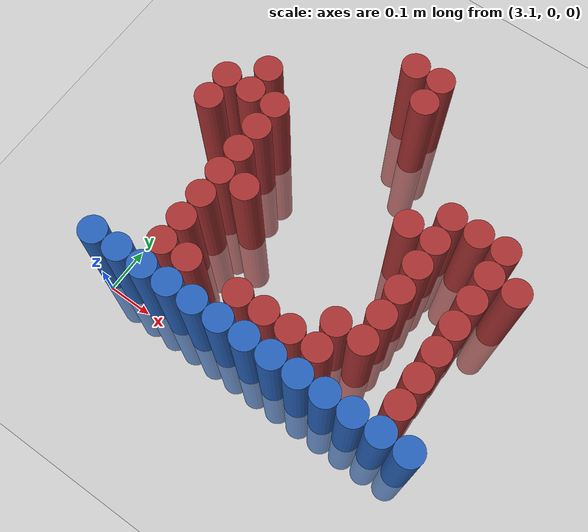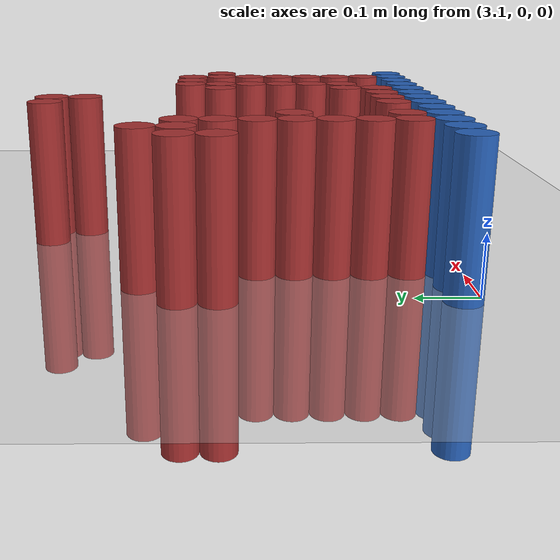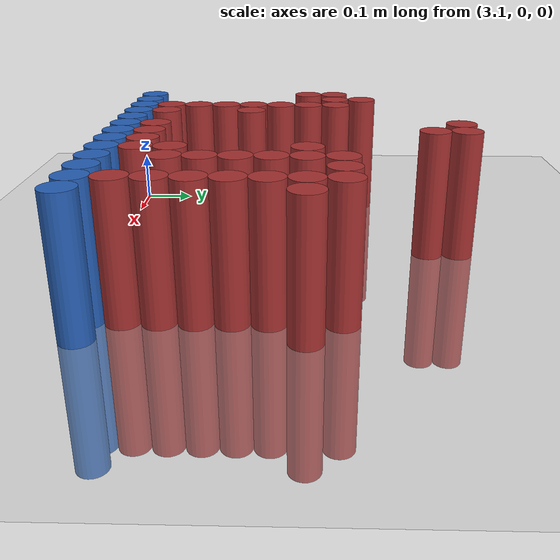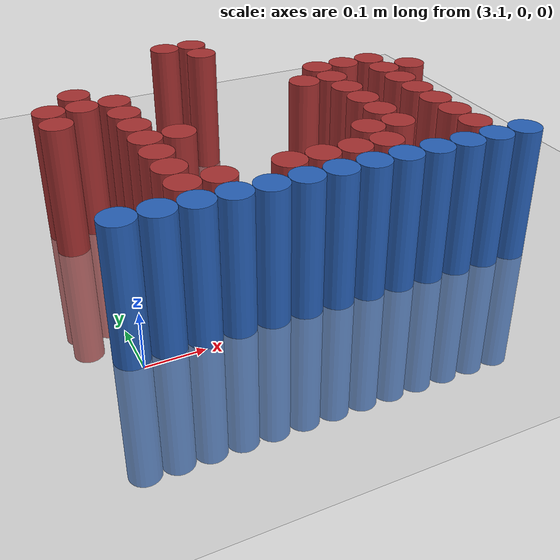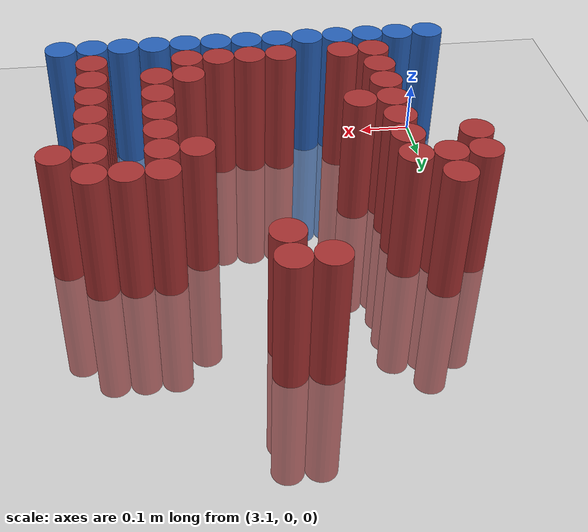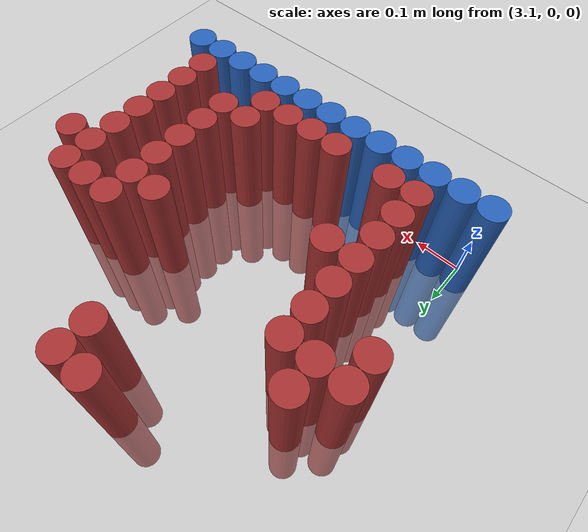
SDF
<sdf version="1.6">
 <world name="default">
  <model name="ground_plane">
   <static>1</static>
   <link name="link">
    <collision name="collision">
     <geometry><plane><normal>0 0 1</normal><size>100 100</size></plane></geometry>
     <surface><friction><ode><mu>100</mu><mu2>50</mu2></ode></friction></surface>
    </collision>
    <visual name="visual">
     <cast_shadows>0</cast_shadows>
     <geometry><plane><normal>0 0 1</normal><size>100 100</size></plane></geometry>
     <material>
      <script><uri>file://media/materials/scripts/gazebo.material</uri><name>Gazebo/Grey</name></script>
     </material>
    </visual>
   </link>
  </model>
  <model name="unit_cylinder_223">
   <static>1</static>
   <pose>3.390000 0.690000 0.000000 0.000000 0.000000 0.000000</pose>
   <link name="link">
    <inertial>
     <mass>1</mass>
     <inertia><ixx>0.145833</ixx><ixy>0</ixy><ixz>0</ixz><iyy>0.145833</iyy><iyz>0</iyz><izz>0.125</izz></inertia>
    </inertial>
    <collision name="collision">
     <geometry><cylinder><radius>0.030000</radius><length>0.5</length></cylinder></geometry>
    </collision>
    <visual name="visual">
     <geometry><cylinder><radius>0.030000</radius><length>0.5</length></cylinder></geometry>
     <material>
      <ambient>0.648000 0.192000 0.192000 1</ambient>
      <diffuse>0.648000 0.192000 0.192000 1</diffuse>
     </material>
     <material>
      <script><name>Gazebo/Grey</name><uri>file://media/materials/scripts/gazebo.material</uri></script>
     </material>
    </visual>
   </link>
  </model>
  <model name="unit_cylinder_224">
   <static>1</static>
   <pose>3.450000 0.690000 0.000000 0.000000 0.000000 0.000000</pose>
   <link name="link">
    <inertial>
     <mass>1</mass>
     <inertia><ixx>0.145833</ixx><ixy>0</ixy><ixz>0</ixz><iyy>0.145833</iyy><iyz>0</iyz><izz>0.125</izz></inertia>
    </inertial>
    <collision name="collision">
     <geometry><cylinder><radius>0.030000</radius><length>0.5</length></cylinder></geometry>
    </collision>
    <visual name="visual">
     <geometry><cylinder><radius>0.030000</radius><length>0.5</length></cylinder></geometry>
     <material>
      <ambient>0.648000 0.192000 0.192000 1</ambient>
      <diffuse>0.648000 0.192000 0.192000 1</diffuse>
     </material>
     <material>
      <script><name>Gazebo/Grey</name><uri>file://media/materials/scripts/gazebo.material</uri></script>
     </material>
    </visual>
   </link>
  </model>
  <model name="unit_cylinder_230">
   <static>1</static>
   <pose>3.450000 0.630000 0.000000 0.000000 0.000000 0.000000</pose>
   <link name="link">
    <inertial>
     <mass>1</mass>
     <inertia><ixx>0.145833</ixx><ixy>0</ixy><ixz>0</ixz><iyy>0.145833</iyy><iyz>0</iyz><izz>0.125</izz></inertia>
    </inertial>
    <collision name="collision">
     <geometry><cylinder><radius>0.030000</radius><length>0.5</length></cylinder></geometry>
    </collision>
    <visual name="visual">
     <geometry><cylinder><radius>0.030000</radius><length>0.5</length></cylinder></geometry>
     <material>
      <ambient>0.648000 0.192000 0.192000 1</ambient>
      <diffuse>0.648000 0.192000 0.192000 1</diffuse>
     </material>
     <material>
      <script><name>Gazebo/Grey</name><uri>file://media/materials/scripts/gazebo.material</uri></script>
     </material>
    </visual>
   </link>
  </model>
  <model name="unit_cylinder_244">
   <static>1</static>
   <pose>3.150000 0.510000 0.000000 0.000000 0.000000 0.000000</pose>
   <link name="link">
    <inertial>
     <mass>1</mass>
     <inertia><ixx>0.145833</ixx><ixy>0</ixy><ixz>0</ixz><iyy>0.145833</iyy><iyz>0</iyz><izz>0.125</izz></inertia>
    </inertial>
    <collision name="collision">
     <geometry><cylinder><radius>0.030000</radius><length>0.5</length></cylinder></geometry>
    </collision>
    <visual name="visual">
     <geometry><cylinder><radius>0.030000</radius><length>0.5</length></cylinder></geometry>
     <material>
      <ambient>0.648000 0.192000 0.192000 1</ambient>
      <diffuse>0.648000 0.192000 0.192000 1</diffuse>
     </material>
     <material>
      <script><name>Gazebo/Grey</name><uri>file://media/materials/scripts/gazebo.material</uri></script>
     </material>
    </visual>
   </link>
  </model>
  <model name="unit_cylinder_249">
   <static>1</static>
   <pose>3.090000 0.450000 0.000000 0.000000 0.000000 0.000000</pose>
   <link name="link">
    <inertial>
     <mass>1</mass>
     <inertia><ixx>0.145833</ixx><ixy>0</ixy><ixz>0</ixz><iyy>0.145833</iyy><iyz>0</iyz><izz>0.125</izz></inertia>
    </inertial>
    <collision name="collision">
     <geometry><cylinder><radius>0.030000</radius><length>0.5</length></cylinder></geometry>
    </collision>
    <visual name="visual">
     <geometry><cylinder><radius>0.030000</radius><length>0.5</length></cylinder></geometry>
     <material>
      <ambient>0.648000 0.192000 0.192000 1</ambient>
      <diffuse>0.648000 0.192000 0.192000 1</diffuse>
     </material>
     <material>
      <script><name>Gazebo/Grey</name><uri>file://media/materials/scripts/gazebo.material</uri></script>
     </material>
    </visual>
   </link>
  </model>
  <model name="unit_cylinder_250">
   <static>1</static>
   <pose>3.150000 0.450000 0.000000 0.000000 0.000000 0.000000</pose>
   <link name="link">
    <inertial>
     <mass>1</mass>
     <inertia><ixx>0.145833</ixx><ixy>0</ixy><ixz>0</ixz><iyy>0.145833</iyy><iyz>0</iyz><izz>0.125</izz></inertia>
    </inertial>
    <collision name="collision">
     <geometry><cylinder><radius>0.030000</radius><length>0.5</length></cylinder></geometry>
    </collision>
    <visual name="visual">
     <geometry><cylinder><radius>0.030000</radius><length>0.5</length></cylinder></geometry>
     <material>
      <ambient>0.648000 0.192000 0.192000 1</ambient>
      <diffuse>0.648000 0.192000 0.192000 1</diffuse>
     </material>
     <material>
      <script><name>Gazebo/Grey</name><uri>file://media/materials/scripts/gazebo.material</uri></script>
     </material>
    </visual>
   </link>
  </model>
  <model name="unit_cylinder_251">
   <static>1</static>
   <pose>3.210000 0.450000 0.000000 0.000000 0.000000 0.000000</pose>
   <link name="link">
    <inertial>
     <mass>1</mass>
     <inertia><ixx>0.145833</ixx><ixy>0</ixy><ixz>0</ixz><iyy>0.145833</iyy><iyz>0</iyz><izz>0.125</izz></inertia>
    </inertial>
    <collision name="collision">
     <geometry><cylinder><radius>0.030000</radius><length>0.5</length></cylinder></geometry>
    </collision>
    <visual name="visual">
     <geometry><cylinder><radius>0.030000</radius><length>0.5</length></cylinder></geometry>
     <material>
      <ambient>0.648000 0.192000 0.192000 1</ambient>
      <diffuse>0.648000 0.192000 0.192000 1</diffuse>
     </material>
     <material>
      <script><name>Gazebo/Grey</name><uri>file://media/materials/scripts/gazebo.material</uri></script>
     </material>
    </visual>
   </link>
  </model>
  <model name="unit_cylinder_252">
   <static>1</static>
   <pose>3.630000 0.450000 0.000000 0.000000 0.000000 0.000000</pose>
   <link name="link">
    <inertial>
     <mass>1</mass>
     <inertia><ixx>0.145833</ixx><ixy>0</ixy><ixz>0</ixz><iyy>0.145833</iyy><iyz>0</iyz><izz>0.125</izz></inertia>
    </inertial>
    <collision name="collision">
     <geometry><cylinder><radius>0.030000</radius><length>0.5</length></cylinder></geometry>
    </collision>
    <visual name="visual">
     <geometry><cylinder><radius>0.030000</radius><length>0.5</length></cylinder></geometry>
     <material>
      <ambient>0.648000 0.192000 0.192000 1</ambient>
      <diffuse>0.648000 0.192000 0.192000 1</diffuse>
     </material>
     <material>
      <script><name>Gazebo/Grey</name><uri>file://media/materials/scripts/gazebo.material</uri></script>
     </material>
    </visual>
   </link>
  </model>
  <model name="unit_cylinder_253">
   <static>1</static>
   <pose>3.690000 0.450000 0.000000 0.000000 0.000000 0.000000</pose>
   <link name="link">
    <inertial>
     <mass>1</mass>
     <inertia><ixx>0.145833</ixx><ixy>0</ixy><ixz>0</ixz><iyy>0.145833</iyy><iyz>0</iyz><izz>0.125</izz></inertia>
    </inertial>
    <collision name="collision">
     <geometry><cylinder><radius>0.030000</radius><length>0.5</length></cylinder></geometry>
    </collision>
    <visual name="visual">
     <geometry><cylinder><radius>0.030000</radius><length>0.5</length></cylinder></geometry>
     <material>
      <ambient>0.648000 0.192000 0.192000 1</ambient>
      <diffuse>0.648000 0.192000 0.192000 1</diffuse>
     </material>
     <material>
      <script><name>Gazebo/Grey</name><uri>file://media/materials/scripts/gazebo.material</uri></script>
     </material>
    </visual>
   </link>
  </model>
  <model name="unit_cylinder_254">
   <static>1</static>
   <pose>3.750000 0.450000 0.000000 0.000000 0.000000 0.000000</pose>
   <link name="link">
    <inertial>
     <mass>1</mass>
     <inertia><ixx>0.145833</ixx><ixy>0</ixy><ixz>0</ixz><iyy>0.145833</iyy><iyz>0</iyz><izz>0.125</izz></inertia>
    </inertial>
    <collision name="collision">
     <geometry><cylinder><radius>0.030000</radius><length>0.5</length></cylinder></geometry>
    </collision>
    <visual name="visual">
     <geometry><cylinder><radius>0.030000</radius><length>0.5</length></cylinder></geometry>
     <material>
      <ambient>0.648000 0.192000 0.192000 1</ambient>
      <diffuse>0.648000 0.192000 0.192000 1</diffuse>
     </material>
     <material>
      <script><name>Gazebo/Grey</name><uri>file://media/materials/scripts/gazebo.material</uri></script>
     </material>
    </visual>
   </link>
  </model>
  <model name="unit_cylinder_261">
   <static>1</static>
   <pose>3.090000 0.390000 0.000000 0.000000 0.000000 0.000000</pose>
   <link name="link">
    <inertial>
     <mass>1</mass>
     <inertia><ixx>0.145833</ixx><ixy>0</ixy><ixz>0</ixz><iyy>0.145833</iyy><iyz>0</iyz><izz>0.125</izz></inertia>
    </inertial>
    <collision name="collision">
     <geometry><cylinder><radius>0.030000</radius><length>0.5</length></cylinder></geometry>
    </collision>
    <visual name="visual">
     <geometry><cylinder><radius>0.030000</radius><length>0.5</length></cylinder></geometry>
     <material>
      <ambient>0.648000 0.192000 0.192000 1</ambient>
      <diffuse>0.648000 0.192000 0.192000 1</diffuse>
     </material>
     <material>
      <script><name>Gazebo/Grey</name><uri>file://media/materials/scripts/gazebo.material</uri></script>
     </material>
    </visual>
   </link>
  </model>
  <model name="unit_cylinder_262">
   <static>1</static>
   <pose>3.210000 0.390000 0.000000 0.000000 0.000000 0.000000</pose>
   <link name="link">
    <inertial>
     <mass>1</mass>
     <inertia><ixx>0.145833</ixx><ixy>0</ixy><ixz>0</ixz><iyy>0.145833</iyy><iyz>0</iyz><izz>0.125</izz></inertia>
    </inertial>
    <collision name="collision">
     <geometry><cylinder><radius>0.030000</radius><length>0.5</length></cylinder></geometry>
    </collision>
    <visual name="visual">
     <geometry><cylinder><radius>0.030000</radius><length>0.5</length></cylinder></geometry>
     <material>
      <ambient>0.648000 0.192000 0.192000 1</ambient>
      <diffuse>0.648000 0.192000 0.192000 1</diffuse>
     </material>
     <material>
      <script><name>Gazebo/Grey</name><uri>file://media/materials/scripts/gazebo.material</uri></script>
     </material>
    </visual>
   </link>
  </model>
  <model name="unit_cylinder_263">
   <static>1</static>
   <pose>3.570000 0.390000 0.000000 0.000000 0.000000 0.000000</pose>
   <link name="link">
    <inertial>
     <mass>1</mass>
     <inertia><ixx>0.145833</ixx><ixy>0</ixy><ixz>0</ixz><iyy>0.145833</iyy><iyz>0</iyz><izz>0.125</izz></inertia>
    </inertial>
    <collision name="collision">
     <geometry><cylinder><radius>0.030000</radius><length>0.5</length></cylinder></geometry>
    </collision>
    <visual name="visual">
     <geometry><cylinder><radius>0.030000</radius><length>0.5</length></cylinder></geometry>
     <material>
      <ambient>0.648000 0.192000 0.192000 1</ambient>
      <diffuse>0.648000 0.192000 0.192000 1</diffuse>
     </material>
     <material>
      <script><name>Gazebo/Grey</name><uri>file://media/materials/scripts/gazebo.material</uri></script>
     </material>
    </visual>
   </link>
  </model>
  <model name="unit_cylinder_264">
   <static>1</static>
   <pose>3.630000 0.390000 0.000000 0.000000 0.000000 0.000000</pose>
   <link name="link">
    <inertial>
     <mass>1</mass>
     <inertia><ixx>0.145833</ixx><ixy>0</ixy><ixz>0</ixz><iyy>0.145833</iyy><iyz>0</iyz><izz>0.125</izz></inertia>
    </inertial>
    <collision name="collision">
     <geometry><cylinder><radius>0.030000</radius><length>0.5</length></cylinder></geometry>
    </collision>
    <visual name="visual">
     <geometry><cylinder><radius>0.030000</radius><length>0.5</length></cylinder></geometry>
     <material>
      <ambient>0.648000 0.192000 0.192000 1</ambient>
      <diffuse>0.648000 0.192000 0.192000 1</diffuse>
     </material>
     <material>
      <script><name>Gazebo/Grey</name><uri>file://media/materials/scripts/gazebo.material</uri></script>
     </material>
    </visual>
   </link>
  </model>
  <model name="unit_cylinder_265">
   <static>1</static>
   <pose>3.750000 0.390000 0.000000 0.000000 0.000000 0.000000</pose>
   <link name="link">
    <inertial>
     <mass>1</mass>
     <inertia><ixx>0.145833</ixx><ixy>0</ixy><ixz>0</ixz><iyy>0.145833</iyy><iyz>0</iyz><izz>0.125</izz></inertia>
    </inertial>
    <collision name="collision">
     <geometry><cylinder><radius>0.030000</radius><length>0.5</length></cylinder></geometry>
    </collision>
    <visual name="visual">
     <geometry><cylinder><radius>0.030000</radius><length>0.5</length></cylinder></geometry>
     <material>
      <ambient>0.648000 0.192000 0.192000 1</ambient>
      <diffuse>0.648000 0.192000 0.192000 1</diffuse>
     </material>
     <material>
      <script><name>Gazebo/Grey</name><uri>file://media/materials/scripts/gazebo.material</uri></script>
     </material>
    </visual>
   </link>
  </model>
  <model name="unit_cylinder_266">
   <static>1</static>
   <pose>3.810000 0.390000 0.000000 0.000000 0.000000 0.000000</pose>
   <link name="link">
    <inertial>
     <mass>1</mass>
     <inertia><ixx>0.145833</ixx><ixy>0</ixy><ixz>0</ixz><iyy>0.145833</iyy><iyz>0</iyz><izz>0.125</izz></inertia>
    </inertial>
    <collision name="collision">
     <geometry><cylinder><radius>0.030000</radius><length>0.5</length></cylinder></geometry>
    </collision>
    <visual name="visual">
     <geometry><cylinder><radius>0.030000</radius><length>0.5</length></cylinder></geometry>
     <material>
      <ambient>0.648000 0.192000 0.192000 1</ambient>
      <diffuse>0.648000 0.192000 0.192000 1</diffuse>
     </material>
     <material>
      <script><name>Gazebo/Grey</name><uri>file://media/materials/scripts/gazebo.material</uri></script>
     </material>
    </visual>
   </link>
  </model>
  <model name="unit_cylinder_274">
   <static>1</static>
   <pose>3.210000 0.330000 0.000000 0.000000 0.000000 0.000000</pose>
   <link name="link">
    <inertial>
     <mass>1</mass>
     <inertia><ixx>0.145833</ixx><ixy>0</ixy><ixz>0</ixz><iyy>0.145833</iyy><iyz>0</iyz><izz>0.125</izz></inertia>
    </inertial>
    <collision name="collision">
     <geometry><cylinder><radius>0.030000</radius><length>0.5</length></cylinder></geometry>
    </collision>
    <visual name="visual">
     <geometry><cylinder><radius>0.030000</radius><length>0.5</length></cylinder></geometry>
     <material>
      <ambient>0.648000 0.192000 0.192000 1</ambient>
      <diffuse>0.648000 0.192000 0.192000 1</diffuse>
     </material>
     <material>
      <script><name>Gazebo/Grey</name><uri>file://media/materials/scripts/gazebo.material</uri></script>
     </material>
    </visual>
   </link>
  </model>
  <model name="unit_cylinder_275">
   <static>1</static>
   <pose>3.630000 0.330000 0.000000 0.000000 0.000000 0.000000</pose>
   <link name="link">
    <inertial>
     <mass>1</mass>
     <inertia><ixx>0.145833</ixx><ixy>0</ixy><ixz>0</ixz><iyy>0.145833</iyy><iyz>0</iyz><izz>0.125</izz></inertia>
    </inertial>
    <collision name="collision">
     <geometry><cylinder><radius>0.030000</radius><length>0.5</length></cylinder></geometry>
    </collision>
    <visual name="visual">
     <geometry><cylinder><radius>0.030000</radius><length>0.5</length></cylinder></geometry>
     <material>
      <ambient>0.648000 0.192000 0.192000 1</ambient>
      <diffuse>0.648000 0.192000 0.192000 1</diffuse>
     </material>
     <material>
      <script><name>Gazebo/Grey</name><uri>file://media/materials/scripts/gazebo.material</uri></script>
     </material>
    </visual>
   </link>
  </model>
  <model name="unit_cylinder_276">
   <static>1</static>
   <pose>3.750000 0.330000 0.000000 0.000000 0.000000 0.000000</pose>
   <link name="link">
    <inertial>
     <mass>1</mass>
     <inertia><ixx>0.145833</ixx><ixy>0</ixy><ixz>0</ixz><iyy>0.145833</iyy><iyz>0</iyz><izz>0.125</izz></inertia>
    </inertial>
    <collision name="collision">
     <geometry><cylinder><radius>0.030000</radius><length>0.5</length></cylinder></geometry>
    </collision>
    <visual name="visual">
     <geometry><cylinder><radius>0.030000</radius><length>0.5</length></cylinder></geometry>
     <material>
      <ambient>0.648000 0.192000 0.192000 1</ambient>
      <diffuse>0.648000 0.192000 0.192000 1</diffuse>
     </material>
     <material>
      <script><name>Gazebo/Grey</name><uri>file://media/materials/scripts/gazebo.material</uri></script>
     </material>
    </visual>
   </link>
  </model>
  <model name="unit_cylinder_285">
   <static>1</static>
   <pose>3.210000 0.270000 0.000000 0.000000 0.000000 0.000000</pose>
   <link name="link">
    <inertial>
     <mass>1</mass>
     <inertia><ixx>0.145833</ixx><ixy>0</ixy><ixz>0</ixz><iyy>0.145833</iyy><iyz>0</iyz><izz>0.125</izz></inertia>
    </inertial>
    <collision name="collision">
     <geometry><cylinder><radius>0.030000</radius><length>0.5</length></cylinder></geometry>
    </collision>
    <visual name="visual">
     <geometry><cylinder><radius>0.030000</radius><length>0.5</length></cylinder></geometry>
     <material>
      <ambient>0.648000 0.192000 0.192000 1</ambient>
      <diffuse>0.648000 0.192000 0.192000 1</diffuse>
     </material>
     <material>
      <script><name>Gazebo/Grey</name><uri>file://media/materials/scripts/gazebo.material</uri></script>
     </material>
    </visual>
   </link>
  </model>
  <model name="unit_cylinder_286">
   <static>1</static>
   <pose>3.270000 0.270000 0.000000 0.000000 0.000000 0.000000</pose>
   <link name="link">
    <inertial>
     <mass>1</mass>
     <inertia><ixx>0.145833</ixx><ixy>0</ixy><ixz>0</ixz><iyy>0.145833</iyy><iyz>0</iyz><izz>0.125</izz></inertia>
    </inertial>
    <collision name="collision">
     <geometry><cylinder><radius>0.030000</radius><length>0.5</length></cylinder></geometry>
    </collision>
    <visual name="visual">
     <geometry><cylinder><radius>0.030000</radius><length>0.5</length></cylinder></geometry>
     <material>
      <ambient>0.648000 0.192000 0.192000 1</ambient>
      <diffuse>0.648000 0.192000 0.192000 1</diffuse>
     </material>
     <material>
      <script><name>Gazebo/Grey</name><uri>file://media/materials/scripts/gazebo.material</uri></script>
     </material>
    </visual>
   </link>
  </model>
  <model name="unit_cylinder_287">
   <static>1</static>
   <pose>3.630000 0.270000 0.000000 0.000000 0.000000 0.000000</pose>
   <link name="link">
    <inertial>
     <mass>1</mass>
     <inertia><ixx>0.145833</ixx><ixy>0</ixy><ixz>0</ixz><iyy>0.145833</iyy><iyz>0</iyz><izz>0.125</izz></inertia>
    </inertial>
    <collision name="collision">
     <geometry><cylinder><radius>0.030000</radius><length>0.5</length></cylinder></geometry>
    </collision>
    <visual name="visual">
     <geometry><cylinder><radius>0.030000</radius><length>0.5</length></cylinder></geometry>
     <material>
      <ambient>0.648000 0.192000 0.192000 1</ambient>
      <diffuse>0.648000 0.192000 0.192000 1</diffuse>
     </material>
     <material>
      <script><name>Gazebo/Grey</name><uri>file://media/materials/scripts/gazebo.material</uri></script>
     </material>
    </visual>
   </link>
  </model>
  <model name="unit_cylinder_288">
   <static>1</static>
   <pose>3.750000 0.270000 0.000000 0.000000 0.000000 0.000000</pose>
   <link name="link">
    <inertial>
     <mass>1</mass>
     <inertia><ixx>0.145833</ixx><ixy>0</ixy><ixz>0</ixz><iyy>0.145833</iyy><iyz>0</iyz><izz>0.125</izz></inertia>
    </inertial>
    <collision name="collision">
     <geometry><cylinder><radius>0.030000</radius><length>0.5</length></cylinder></geometry>
    </collision>
    <visual name="visual">
     <geometry><cylinder><radius>0.030000</radius><length>0.5</length></cylinder></geometry>
     <material>
      <ambient>0.648000 0.192000 0.192000 1</ambient>
      <diffuse>0.648000 0.192000 0.192000 1</diffuse>
     </material>
     <material>
      <script><name>Gazebo/Grey</name><uri>file://media/materials/scripts/gazebo.material</uri></script>
     </material>
    </visual>
   </link>
  </model>
  <model name="unit_cylinder_294">
   <static>1</static>
   <pose>3.210000 0.210000 0.000000 0.000000 0.000000 0.000000</pose>
   <link name="link">
    <inertial>
     <mass>1</mass>
     <inertia><ixx>0.145833</ixx><ixy>0</ixy><ixz>0</ixz><iyy>0.145833</iyy><iyz>0</iyz><izz>0.125</izz></inertia>
    </inertial>
    <collision name="collision">
     <geometry><cylinder><radius>0.030000</radius><length>0.5</length></cylinder></geometry>
    </collision>
    <visual name="visual">
     <geometry><cylinder><radius>0.030000</radius><length>0.5</length></cylinder></geometry>
     <material>
      <ambient>0.648000 0.192000 0.192000 1</ambient>
      <diffuse>0.648000 0.192000 0.192000 1</diffuse>
     </material>
     <material>
      <script><name>Gazebo/Grey</name><uri>file://media/materials/scripts/gazebo.material</uri></script>
     </material>
    </visual>
   </link>
  </model>
  <model name="unit_cylinder_295">
   <static>1</static>
   <pose>3.630000 0.210000 0.000000 0.000000 0.000000 0.000000</pose>
   <link name="link">
    <inertial>
     <mass>1</mass>
     <inertia><ixx>0.145833</ixx><ixy>0</ixy><ixz>0</ixz><iyy>0.145833</iyy><iyz>0</iyz><izz>0.125</izz></inertia>
    </inertial>
    <collision name="collision">
     <geometry><cylinder><radius>0.030000</radius><length>0.5</length></cylinder></geometry>
    </collision>
    <visual name="visual">
     <geometry><cylinder><radius>0.030000</radius><length>0.5</length></cylinder></geometry>
     <material>
      <ambient>0.648000 0.192000 0.192000 1</ambient>
      <diffuse>0.648000 0.192000 0.192000 1</diffuse>
     </material>
     <material>
      <script><name>Gazebo/Grey</name><uri>file://media/materials/scripts/gazebo.material</uri></script>
     </material>
    </visual>
   </link>
  </model>
  <model name="unit_cylinder_296">
   <static>1</static>
   <pose>3.750000 0.210000 0.000000 0.000000 0.000000 0.000000</pose>
   <link name="link">
    <inertial>
     <mass>1</mass>
     <inertia><ixx>0.145833</ixx><ixy>0</ixy><ixz>0</ixz><iyy>0.145833</iyy><iyz>0</iyz><izz>0.125</izz></inertia>
    </inertial>
    <collision name="collision">
     <geometry><cylinder><radius>0.030000</radius><length>0.5</length></cylinder></geometry>
    </collision>
    <visual name="visual">
     <geometry><cylinder><radius>0.030000</radius><length>0.5</length></cylinder></geometry>
     <material>
      <ambient>0.648000 0.192000 0.192000 1</ambient>
      <diffuse>0.648000 0.192000 0.192000 1</diffuse>
     </material>
     <material>
      <script><name>Gazebo/Grey</name><uri>file://media/materials/scripts/gazebo.material</uri></script>
     </material>
    </visual>
   </link>
  </model>
  <model name="unit_cylinder_300">
   <static>1</static>
   <pose>3.210000 0.150000 0.000000 0.000000 0.000000 0.000000</pose>
   <link name="link">
    <inertial>
     <mass>1</mass>
     <inertia><ixx>0.145833</ixx><ixy>0</ixy><ixz>0</ixz><iyy>0.145833</iyy><iyz>0</iyz><izz>0.125</izz></inertia>
    </inertial>
    <collision name="collision">
     <geometry><cylinder><radius>0.030000</radius><length>0.5</length></cylinder></geometry>
    </collision>
    <visual name="visual">
     <geometry><cylinder><radius>0.030000</radius><length>0.5</length></cylinder></geometry>
     <material>
      <ambient>0.648000 0.192000 0.192000 1</ambient>
      <diffuse>0.648000 0.192000 0.192000 1</diffuse>
     </material>
     <material>
      <script><name>Gazebo/Grey</name><uri>file://media/materials/scripts/gazebo.material</uri></script>
     </material>
    </visual>
   </link>
  </model>
  <model name="unit_cylinder_301">
   <static>1</static>
   <pose>3.570000 0.150000 0.000000 0.000000 0.000000 0.000000</pose>
   <link name="link">
    <inertial>
     <mass>1</mass>
     <inertia><ixx>0.145833</ixx><ixy>0</ixy><ixz>0</ixz><iyy>0.145833</iyy><iyz>0</iyz><izz>0.125</izz></inertia>
    </inertial>
    <collision name="collision">
     <geometry><cylinder><radius>0.030000</radius><length>0.5</length></cylinder></geometry>
    </collision>
    <visual name="visual">
     <geometry><cylinder><radius>0.030000</radius><length>0.5</length></cylinder></geometry>
     <material>
      <ambient>0.648000 0.192000 0.192000 1</ambient>
      <diffuse>0.648000 0.192000 0.192000 1</diffuse>
     </material>
     <material>
      <script><name>Gazebo/Grey</name><uri>file://media/materials/scripts/gazebo.material</uri></script>
     </material>
    </visual>
   </link>
  </model>
  <model name="unit_cylinder_302">
   <static>1</static>
   <pose>3.630000 0.150000 0.000000 0.000000 0.000000 0.000000</pose>
   <link name="link">
    <inertial>
     <mass>1</mass>
     <inertia><ixx>0.145833</ixx><ixy>0</ixy><ixz>0</ixz><iyy>0.145833</iyy><iyz>0</iyz><izz>0.125</izz></inertia>
    </inertial>
    <collision name="collision">
     <geometry><cylinder><radius>0.030000</radius><length>0.5</length></cylinder></geometry>
    </collision>
    <visual name="visual">
     <geometry><cylinder><radius>0.030000</radius><length>0.5</length></cylinder></geometry>
     <material>
      <ambient>0.648000 0.192000 0.192000 1</ambient>
      <diffuse>0.648000 0.192000 0.192000 1</diffuse>
     </material>
     <material>
      <script><name>Gazebo/Grey</name><uri>file://media/materials/scripts/gazebo.material</uri></script>
     </material>
    </visual>
   </link>
  </model>
  <model name="unit_cylinder_303">
   <static>1</static>
   <pose>3.750000 0.150000 0.000000 0.000000 0.000000 0.000000</pose>
   <link name="link">
    <inertial>
     <mass>1</mass>
     <inertia><ixx>0.145833</ixx><ixy>0</ixy><ixz>0</ixz><iyy>0.145833</iyy><iyz>0</iyz><izz>0.125</izz></inertia>
    </inertial>
    <collision name="collision">
     <geometry><cylinder><radius>0.030000</radius><length>0.5</length></cylinder></geometry>
    </collision>
    <visual name="visual">
     <geometry><cylinder><radius>0.030000</radius><length>0.5</length></cylinder></geometry>
     <material>
      <ambient>0.648000 0.192000 0.192000 1</ambient>
      <diffuse>0.648000 0.192000 0.192000 1</diffuse>
     </material>
     <material>
      <script><name>Gazebo/Grey</name><uri>file://media/materials/scripts/gazebo.material</uri></script>
     </material>
    </visual>
   </link>
  </model>
  <model name="unit_cylinder_310">
   <static>1</static>
   <pose>3.210000 0.090000 0.000000 0.000000 0.000000 0.000000</pose>
   <link name="link">
    <inertial>
     <mass>1</mass>
     <inertia><ixx>0.145833</ixx><ixy>0</ixy><ixz>0</ixz><iyy>0.145833</iyy><iyz>0</iyz><izz>0.125</izz></inertia>
    </inertial>
    <collision name="collision">
     <geometry><cylinder><radius>0.030000</radius><length>0.5</length></cylinder></geometry>
    </collision>
    <visual name="visual">
     <geometry><cylinder><radius>0.030000</radius><length>0.5</length></cylinder></geometry>
     <material>
      <ambient>0.648000 0.192000 0.192000 1</ambient>
      <diffuse>0.648000 0.192000 0.192000 1</diffuse>
     </material>
     <material>
      <script><name>Gazebo/Grey</name><uri>file://media/materials/scripts/gazebo.material</uri></script>
     </material>
    </visual>
   </link>
  </model>
  <model name="unit_cylinder_311">
   <static>1</static>
   <pose>3.270000 0.090000 0.000000 0.000000 0.000000 0.000000</pose>
   <link name="link">
    <inertial>
     <mass>1</mass>
     <inertia><ixx>0.145833</ixx><ixy>0</ixy><ixz>0</ixz><iyy>0.145833</iyy><iyz>0</iyz><izz>0.125</izz></inertia>
    </inertial>
    <collision name="collision">
     <geometry><cylinder><radius>0.030000</radius><length>0.5</length></cylinder></geometry>
    </collision>
    <visual name="visual">
     <geometry><cylinder><radius>0.030000</radius><length>0.5</length></cylinder></geometry>
     <material>
      <ambient>0.648000 0.192000 0.192000 1</ambient>
      <diffuse>0.648000 0.192000 0.192000 1</diffuse>
     </material>
     <material>
      <script><name>Gazebo/Grey</name><uri>file://media/materials/scripts/gazebo.material</uri></script>
     </material>
    </visual>
   </link>
  </model>
  <model name="unit_cylinder_312">
   <static>1</static>
   <pose>3.390000 0.090000 0.000000 0.000000 0.000000 0.000000</pose>
   <link name="link">
    <inertial>
     <mass>1</mass>
     <inertia><ixx>0.145833</ixx><ixy>0</ixy><ixz>0</ixz><iyy>0.145833</iyy><iyz>0</iyz><izz>0.125</izz></inertia>
    </inertial>
    <collision name="collision">
     <geometry><cylinder><radius>0.030000</radius><length>0.5</length></cylinder></geometry>
    </collision>
    <visual name="visual">
     <geometry><cylinder><radius>0.030000</radius><length>0.5</length></cylinder></geometry>
     <material>
      <ambient>0.648000 0.192000 0.192000 1</ambient>
      <diffuse>0.648000 0.192000 0.192000 1</diffuse>
     </material>
     <material>
      <script><name>Gazebo/Grey</name><uri>file://media/materials/scripts/gazebo.material</uri></script>
     </material>
    </visual>
   </link>
  </model>
  <model name="unit_cylinder_313">
   <static>1</static>
   <pose>3.450000 0.090000 0.000000 0.000000 0.000000 0.000000</pose>
   <link name="link">
    <inertial>
     <mass>1</mass>
     <inertia><ixx>0.145833</ixx><ixy>0</ixy><ixz>0</ixz><iyy>0.145833</iyy><iyz>0</iyz><izz>0.125</izz></inertia>
    </inertial>
    <collision name="collision">
     <geometry><cylinder><radius>0.030000</radius><length>0.5</length></cylinder></geometry>
    </collision>
    <visual name="visual">
     <geometry><cylinder><radius>0.030000</radius><length>0.5</length></cylinder></geometry>
     <material>
      <ambient>0.648000 0.192000 0.192000 1</ambient>
      <diffuse>0.648000 0.192000 0.192000 1</diffuse>
     </material>
     <material>
      <script><name>Gazebo/Grey</name><uri>file://media/materials/scripts/gazebo.material</uri></script>
     </material>
    </visual>
   </link>
  </model>
  <model name="unit_cylinder_314">
   <static>1</static>
   <pose>3.510000 0.090000 0.000000 0.000000 0.000000 0.000000</pose>
   <link name="link">
    <inertial>
     <mass>1</mass>
     <inertia><ixx>0.145833</ixx><ixy>0</ixy><ixz>0</ixz><iyy>0.145833</iyy><iyz>0</iyz><izz>0.125</izz></inertia>
    </inertial>
    <collision name="collision">
     <geometry><cylinder><radius>0.030000</radius><length>0.5</length></cylinder></geometry>
    </collision>
    <visual name="visual">
     <geometry><cylinder><radius>0.030000</radius><length>0.5</length></cylinder></geometry>
     <material>
      <ambient>0.648000 0.192000 0.192000 1</ambient>
      <diffuse>0.648000 0.192000 0.192000 1</diffuse>
     </material>
     <material>
      <script><name>Gazebo/Grey</name><uri>file://media/materials/scripts/gazebo.material</uri></script>
     </material>
    </visual>
   </link>
  </model>
  <model name="unit_cylinder_315">
   <static>1</static>
   <pose>3.570000 0.090000 0.000000 0.000000 0.000000 0.000000</pose>
   <link name="link">
    <inertial>
     <mass>1</mass>
     <inertia><ixx>0.145833</ixx><ixy>0</ixy><ixz>0</ixz><iyy>0.145833</iyy><iyz>0</iyz><izz>0.125</izz></inertia>
    </inertial>
    <collision name="collision">
     <geometry><cylinder><radius>0.030000</radius><length>0.5</length></cylinder></geometry>
    </collision>
    <visual name="visual">
     <geometry><cylinder><radius>0.030000</radius><length>0.5</length></cylinder></geometry>
     <material>
      <ambient>0.648000 0.192000 0.192000 1</ambient>
      <diffuse>0.648000 0.192000 0.192000 1</diffuse>
     </material>
     <material>
      <script><name>Gazebo/Grey</name><uri>file://media/materials/scripts/gazebo.material</uri></script>
     </material>
    </visual>
   </link>
  </model>
  <model name="unit_cylinder_316">
   <static>1</static>
   <pose>3.750000 0.090000 0.000000 0.000000 0.000000 0.000000</pose>
   <link name="link">
    <inertial>
     <mass>1</mass>
     <inertia><ixx>0.145833</ixx><ixy>0</ixy><ixz>0</ixz><iyy>0.145833</iyy><iyz>0</iyz><izz>0.125</izz></inertia>
    </inertial>
    <collision name="collision">
     <geometry><cylinder><radius>0.030000</radius><length>0.5</length></cylinder></geometry>
    </collision>
    <visual name="visual">
     <geometry><cylinder><radius>0.030000</radius><length>0.5</length></cylinder></geometry>
     <material>
      <ambient>0.648000 0.192000 0.192000 1</ambient>
      <diffuse>0.648000 0.192000 0.192000 1</diffuse>
     </material>
     <material>
      <script><name>Gazebo/Grey</name><uri>file://media/materials/scripts/gazebo.material</uri></script>
     </material>
    </visual>
   </link>
  </model>
  <model name="unit_cylinder_334">
   <static>1</static>
   <pose>3.090000 0.030000 0.000000 0.000000 0.000000 0.000000</pose>
   <link name="link">
    <inertial>
     <mass>1</mass>
     <inertia><ixx>0.145833</ixx><ixy>0</ixy><ixz>0</ixz><iyy>0.145833</iyy><iyz>0</iyz><izz>0.125</izz></inertia>
    </inertial>
    <collision name="collision">
     <geometry><cylinder><radius>0.030000</radius><length>0.5</length></cylinder></geometry>
    </collision>
    <visual name="visual">
     <geometry><cylinder><radius>0.030000</radius><length>0.5</length></cylinder></geometry>
     <material>
      <ambient>0.152000 0.379000 0.720000 1</ambient>
      <diffuse>0.152000 0.379000 0.720000 1</diffuse>
     </material>
     <material>
      <script><name>Gazebo/Grey</name><uri>file://media/materials/scripts/gazebo.material</uri></script>
     </material>
    </visual>
   </link>
  </model>
  <model name="unit_cylinder_335">
   <static>1</static>
   <pose>3.150000 0.030000 0.000000 0.000000 0.000000 0.000000</pose>
   <link name="link">
    <inertial>
     <mass>1</mass>
     <inertia><ixx>0.145833</ixx><ixy>0</ixy><ixz>0</ixz><iyy>0.145833</iyy><iyz>0</iyz><izz>0.125</izz></inertia>
    </inertial>
    <collision name="collision">
     <geometry><cylinder><radius>0.030000</radius><length>0.5</length></cylinder></geometry>
    </collision>
    <visual name="visual">
     <geometry><cylinder><radius>0.030000</radius><length>0.5</length></cylinder></geometry>
     <material>
      <ambient>0.152000 0.379000 0.720000 1</ambient>
      <diffuse>0.152000 0.379000 0.720000 1</diffuse>
     </material>
     <material>
      <script><name>Gazebo/Grey</name><uri>file://media/materials/scripts/gazebo.material</uri></script>
     </material>
    </visual>
   </link>
  </model>
  <model name="unit_cylinder_336">
   <static>1</static>
   <pose>3.210000 0.030000 0.000000 0.000000 0.000000 0.000000</pose>
   <link name="link">
    <inertial>
     <mass>1</mass>
     <inertia><ixx>0.145833</ixx><ixy>0</ixy><ixz>0</ixz><iyy>0.145833</iyy><iyz>0</iyz><izz>0.125</izz></inertia>
    </inertial>
    <collision name="collision">
     <geometry><cylinder><radius>0.030000</radius><length>0.5</length></cylinder></geometry>
    </collision>
    <visual name="visual">
     <geometry><cylinder><radius>0.030000</radius><length>0.5</length></cylinder></geometry>
     <material>
      <ambient>0.152000 0.379000 0.720000 1</ambient>
      <diffuse>0.152000 0.379000 0.720000 1</diffuse>
     </material>
     <material>
      <script><name>Gazebo/Grey</name><uri>file://media/materials/scripts/gazebo.material</uri></script>
     </material>
    </visual>
   </link>
  </model>
  <model name="unit_cylinder_337">
   <static>1</static>
   <pose>3.270000 0.030000 0.000000 0.000000 0.000000 0.000000</pose>
   <link name="link">
    <inertial>
     <mass>1</mass>
     <inertia><ixx>0.145833</ixx><ixy>0</ixy><ixz>0</ixz><iyy>0.145833</iyy><iyz>0</iyz><izz>0.125</izz></inertia>
    </inertial>
    <collision name="collision">
     <geometry><cylinder><radius>0.030000</radius><length>0.5</length></cylinder></geometry>
    </collision>
    <visual name="visual">
     <geometry><cylinder><radius>0.030000</radius><length>0.5</length></cylinder></geometry>
     <material>
      <ambient>0.152000 0.379000 0.720000 1</ambient>
      <diffuse>0.152000 0.379000 0.720000 1</diffuse>
     </material>
     <material>
      <script><name>Gazebo/Grey</name><uri>file://media/materials/scripts/gazebo.material</uri></script>
     </material>
    </visual>
   </link>
  </model>
  <model name="unit_cylinder_338">
   <static>1</static>
   <pose>3.330000 0.030000 0.000000 0.000000 0.000000 0.000000</pose>
   <link name="link">
    <inertial>
     <mass>1</mass>
     <inertia><ixx>0.145833</ixx><ixy>0</ixy><ixz>0</ixz><iyy>0.145833</iyy><iyz>0</iyz><izz>0.125</izz></inertia>
    </inertial>
    <collision name="collision">
     <geometry><cylinder><radius>0.030000</radius><length>0.5</length></cylinder></geometry>
    </collision>
    <visual name="visual">
     <geometry><cylinder><radius>0.030000</radius><length>0.5</length></cylinder></geometry>
     <material>
      <ambient>0.152000 0.379000 0.720000 1</ambient>
      <diffuse>0.152000 0.379000 0.720000 1</diffuse>
     </material>
     <material>
      <script><name>Gazebo/Grey</name><uri>file://media/materials/scripts/gazebo.material</uri></script>
     </material>
    </visual>
   </link>
  </model>
  <model name="unit_cylinder_339">
   <static>1</static>
   <pose>3.390000 0.030000 0.000000 0.000000 0.000000 0.000000</pose>
   <link name="link">
    <inertial>
     <mass>1</mass>
     <inertia><ixx>0.145833</ixx><ixy>0</ixy><ixz>0</ixz><iyy>0.145833</iyy><iyz>0</iyz><izz>0.125</izz></inertia>
    </inertial>
    <collision name="collision">
     <geometry><cylinder><radius>0.030000</radius><length>0.5</length></cylinder></geometry>
    </collision>
    <visual name="visual">
     <geometry><cylinder><radius>0.030000</radius><length>0.5</length></cylinder></geometry>
     <material>
      <ambient>0.152000 0.379000 0.720000 1</ambient>
      <diffuse>0.152000 0.379000 0.720000 1</diffuse>
     </material>
     <material>
      <script><name>Gazebo/Grey</name><uri>file://media/materials/scripts/gazebo.material</uri></script>
     </material>
    </visual>
   </link>
  </model>
  <model name="unit_cylinder_340">
   <static>1</static>
   <pose>3.450000 0.030000 0.000000 0.000000 0.000000 0.000000</pose>
   <link name="link">
    <inertial>
     <mass>1</mass>
     <inertia><ixx>0.145833</ixx><ixy>0</ixy><ixz>0</ixz><iyy>0.145833</iyy><iyz>0</iyz><izz>0.125</izz></inertia>
    </inertial>
    <collision name="collision">
     <geometry><cylinder><radius>0.030000</radius><length>0.5</length></cylinder></geometry>
    </collision>
    <visual name="visual">
     <geometry><cylinder><radius>0.030000</radius><length>0.5</length></cylinder></geometry>
     <material>
      <ambient>0.152000 0.379000 0.720000 1</ambient>
      <diffuse>0.152000 0.379000 0.720000 1</diffuse>
     </material>
     <material>
      <script><name>Gazebo/Grey</name><uri>file://media/materials/scripts/gazebo.material</uri></script>
     </material>
    </visual>
   </link>
  </model>
  <model name="unit_cylinder_341">
   <static>1</static>
   <pose>3.510000 0.030000 0.000000 0.000000 0.000000 0.000000</pose>
   <link name="link">
    <inertial>
     <mass>1</mass>
     <inertia><ixx>0.145833</ixx><ixy>0</ixy><ixz>0</ixz><iyy>0.145833</iyy><iyz>0</iyz><izz>0.125</izz></inertia>
    </inertial>
    <collision name="collision">
     <geometry><cylinder><radius>0.030000</radius><length>0.5</length></cylinder></geometry>
    </collision>
    <visual name="visual">
     <geometry><cylinder><radius>0.030000</radius><length>0.5</length></cylinder></geometry>
     <material>
      <ambient>0.152000 0.379000 0.720000 1</ambient>
      <diffuse>0.152000 0.379000 0.720000 1</diffuse>
     </material>
     <material>
      <script><name>Gazebo/Grey</name><uri>file://media/materials/scripts/gazebo.material</uri></script>
     </material>
    </visual>
   </link>
  </model>
  <model name="unit_cylinder_342">
   <static>1</static>
   <pose>3.570000 0.030000 0.000000 0.000000 0.000000 0.000000</pose>
   <link name="link">
    <inertial>
     <mass>1</mass>
     <inertia><ixx>0.145833</ixx><ixy>0</ixy><ixz>0</ixz><iyy>0.145833</iyy><iyz>0</iyz><izz>0.125</izz></inertia>
    </inertial>
    <collision name="collision">
     <geometry><cylinder><radius>0.030000</radius><length>0.5</length></cylinder></geometry>
    </collision>
    <visual name="visual">
     <geometry><cylinder><radius>0.030000</radius><length>0.5</length></cylinder></geometry>
     <material>
      <ambient>0.152000 0.379000 0.720000 1</ambient>
      <diffuse>0.152000 0.379000 0.720000 1</diffuse>
     </material>
     <material>
      <script><name>Gazebo/Grey</name><uri>file://media/materials/scripts/gazebo.material</uri></script>
     </material>
    </visual>
   </link>
  </model>
  <model name="unit_cylinder_343">
   <static>1</static>
   <pose>3.630000 0.030000 0.000000 0.000000 0.000000 0.000000</pose>
   <link name="link">
    <inertial>
     <mass>1</mass>
     <inertia><ixx>0.145833</ixx><ixy>0</ixy><ixz>0</ixz><iyy>0.145833</iyy><iyz>0</iyz><izz>0.125</izz></inertia>
    </inertial>
    <collision name="collision">
     <geometry><cylinder><radius>0.030000</radius><length>0.5</length></cylinder></geometry>
    </collision>
    <visual name="visual">
     <geometry><cylinder><radius>0.030000</radius><length>0.5</length></cylinder></geometry>
     <material>
      <ambient>0.152000 0.379000 0.720000 1</ambient>
      <diffuse>0.152000 0.379000 0.720000 1</diffuse>
     </material>
     <material>
      <script><name>Gazebo/Grey</name><uri>file://media/materials/scripts/gazebo.material</uri></script>
     </material>
    </visual>
   </link>
  </model>
  <model name="unit_cylinder_344">
   <static>1</static>
   <pose>3.690000 0.030000 0.000000 0.000000 0.000000 0.000000</pose>
   <link name="link">
    <inertial>
     <mass>1</mass>
     <inertia><ixx>0.145833</ixx><ixy>0</ixy><ixz>0</ixz><iyy>0.145833</iyy><iyz>0</iyz><izz>0.125</izz></inertia>
    </inertial>
    <collision name="collision">
     <geometry><cylinder><radius>0.030000</radius><length>0.5</length></cylinder></geometry>
    </collision>
    <visual name="visual">
     <geometry><cylinder><radius>0.030000</radius><length>0.5</length></cylinder></geometry>
     <material>
      <ambient>0.152000 0.379000 0.720000 1</ambient>
      <diffuse>0.152000 0.379000 0.720000 1</diffuse>
     </material>
     <material>
      <script><name>Gazebo/Grey</name><uri>file://media/materials/scripts/gazebo.material</uri></script>
     </material>
    </visual>
   </link>
  </model>
  <model name="unit_cylinder_345">
   <static>1</static>
   <pose>3.750000 0.030000 0.000000 0.000000 0.000000 0.000000</pose>
   <link name="link">
    <inertial>
     <mass>1</mass>
     <inertia><ixx>0.145833</ixx><ixy>0</ixy><ixz>0</ixz><iyy>0.145833</iyy><iyz>0</iyz><izz>0.125</izz></inertia>
    </inertial>
    <collision name="collision">
     <geometry><cylinder><radius>0.030000</radius><length>0.5</length></cylinder></geometry>
    </collision>
    <visual name="visual">
     <geometry><cylinder><radius>0.030000</radius><length>0.5</length></cylinder></geometry>
     <material>
      <ambient>0.152000 0.379000 0.720000 1</ambient>
      <diffuse>0.152000 0.379000 0.720000 1</diffuse>
     </material>
     <material>
      <script><name>Gazebo/Grey</name><uri>file://media/materials/scripts/gazebo.material</uri></script>
     </material>
    </visual>
   </link>
  </model>
  <model name="unit_cylinder_346">
   <static>1</static>
   <pose>3.810000 0.030000 0.000000 0.000000 0.000000 0.000000</pose>
   <link name="link">
    <inertial>
     <mass>1</mass>
     <inertia><ixx>0.145833</ixx><ixy>0</ixy><ixz>0</ixz><iyy>0.145833</iyy><iyz>0</iyz><izz>0.125</izz></inertia>
    </inertial>
    <collision name="collision">
     <geometry><cylinder><radius>0.030000</radius><length>0.5</length></cylinder></geometry>
    </collision>
    <visual name="visual">
     <geometry><cylinder><radius>0.030000</radius><length>0.5</length></cylinder></geometry>
     <material>
      <ambient>0.152000 0.379000 0.720000 1</ambient>
      <diffuse>0.152000 0.379000 0.720000 1</diffuse>
     </material>
     <material>
      <script><name>Gazebo/Grey</name><uri>file://media/materials/scripts/gazebo.material</uri></script>
     </material>
    </visual>
   </link>
  </model>
 </world>
</sdf>
